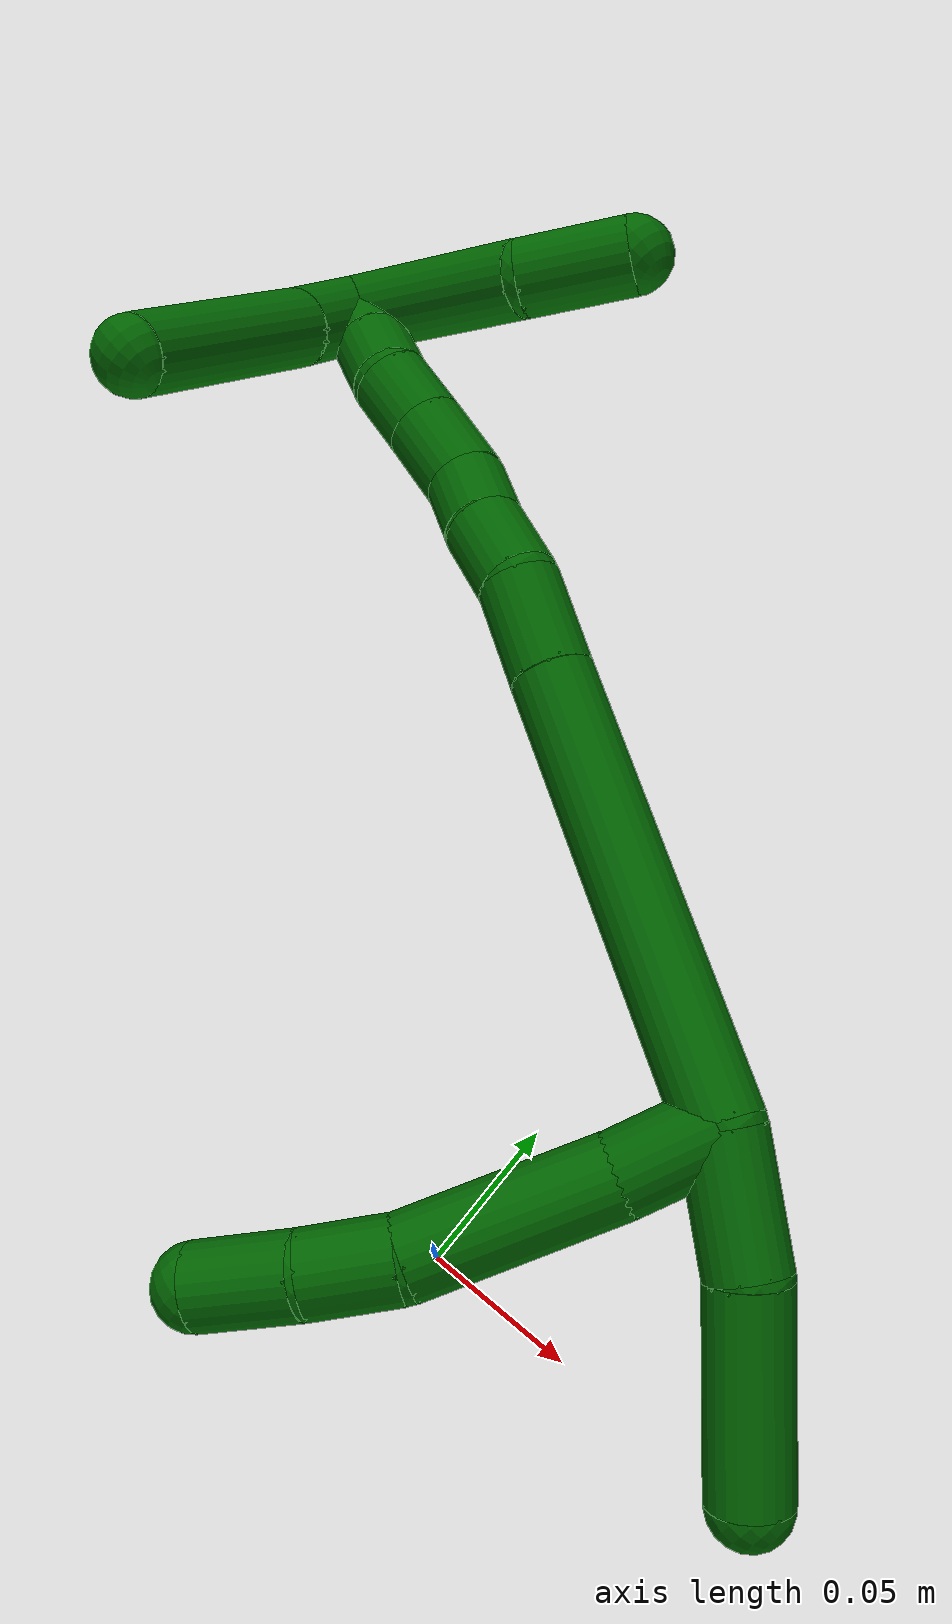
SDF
<sdf version="1.7">
 <world name="default">
  <model name="photoneo_s_sensor">
   <static>1</static>
   <pose>0 0 2 1.57079 1.57079 3.14159</pose>
   <link name="link">
    <inertial><mass>0.1</mass></inertial>
    <sensor name="sensor" type="depth">
     <update_rate>30</update_rate>
     <camera>
      <horizontal_fov>1.22</horizontal_fov>
      <image><width>1920</width><height>1200</height><format>B8G8R8</format></image>
      <clip><near>0.1</near><far>4</far></clip>
      <depth_camera><output>points</output></depth_camera>
     </camera>
     <plugin name="camera_plugin" filename="libgazebo_ros_depth_camera.so">
      <baseline>0.2</baseline>
      <alwaysOn>1</alwaysOn>
      <updateRate>0.0</updateRate>
      <cameraName>camera_ir</cameraName>
      <imageTopicName>/camera/color/image_raw</imageTopicName>
      <cameraInfoTopicName>/camera/color/camera_info</cameraInfoTopicName>
      <depthImageTopicName>/camera/depth/image_raw</depthImageTopicName>
      <depthImageCameraInfoTopicName>/camera/depth/camera_info</depthImageCameraInfoTopicName>
      <pointCloudTopicName>/camera/depth/points</pointCloudTopicName>
      <frameName>fr_optical</frameName>
      <pointCloudCutoff>0.1</pointCloudCutoff>
      <pointCloudCutoffMax>2.0</pointCloudCutoffMax>
      <distortionK1>0</distortionK1>
      <distortionK2>0</distortionK2>
      <distortionK3>0</distortionK3>
      <distortionT1>0</distortionT1>
      <distortionT2>0</distortionT2>
      <CxPrime>0</CxPrime>
      <Cx>0</Cx>
      <Cy>0</Cy>
      <focalLength>0</focalLength>
      <hackBaseline>0</hackBaseline>
     </plugin>
    </sensor>
   </link>
  </model>
  <model name="bin">
   <static>1</static>
   <link name="bottom">
    <collision name="collision-bottom">
     <pose>0 0 -0.01 0 -0 0</pose>
     <geometry><box><size>0.8 0.6 0.02</size></box></geometry>
     <surface>
      <friction><ode><mu>100</mu><mu2>100</mu2></ode></friction>
      <contact><collide_bitmask>65535</collide_bitmask></contact>
     </surface>
    </collision>
   </link>
   <link name="west_wall">
    <collision name="collision-west_wall">
     <pose>-0.41 0 0.1 0 -0 0</pose>
     <geometry><box><size>0.02 0.6 0.2</size></box></geometry>
     <surface>
      <friction><ode><mu>100</mu><mu2>100</mu2></ode></friction>
      <contact><collide_bitmask>65535</collide_bitmask></contact>
     </surface>
    </collision>
   </link>
   <link name="east_wall">
    <collision name="collision-east_wall">
     <pose>0.41 0 0.1 0 -0 0</pose>
     <geometry><box><size>0.02 0.6 0.2</size></box></geometry>
     <surface>
      <friction><ode><mu>100</mu><mu2>100</mu2></ode></friction>
      <contact><collide_bitmask>65535</collide_bitmask></contact>
     </surface>
    </collision>
   </link>
   <link name="south_wall">
    <collision name="collision-south_wall">
     <pose>0 -0.31 0.1 0 -0 0</pose>
     <geometry><box><size>0.8 0.02 0.2</size></box></geometry>
     <surface>
      <friction><ode><mu>100</mu><mu2>100</mu2></ode></friction>
      <contact><collide_bitmask>65535</collide_bitmask></contact>
     </surface>
    </collision>
   </link>
   <link name="north_wall">
    <collision name="collision-north_wall">
     <pose>0 0.31 0.1 0 -0 0</pose>
     <geometry><box><size>0.8 0.02 0.2</size></box></geometry>
     <surface>
      <friction><ode><mu>100</mu><mu2>100</mu2></ode></friction>
      <contact><collide_bitmask>65535</collide_bitmask></contact>
     </surface>
    </collision>
   </link>
  </model>
  <model name="6">
   <static>0</static>
   <link name="6">
    <collision name="collision-cylinder-e_1_2_8">
     <pose>0.0067 -0.013029 0.004398 1.24524 0.453396 0.328195</pose>
     <geometry><cylinder><radius>0.0125</radius><length>0.030594</length></cylinder></geometry>
     <surface>
      <friction><ode><mu>1.16</mu><mu2>1.16</mu2><slip1>0</slip1><slip2>0</slip2></ode></friction>
      <contact><ode><kp>1e+06</kp><kd>1</kd><max_vel>0</max_vel><min_depth>0.001</min_depth></ode></contact>
     </surface>
    </collision>
    <visual name="visual-cylinder-e_1_2_8">
     <pose>0.0067 -0.013029 0.004398 1.24524 0.453396 0.328195</pose>
     <geometry><cylinder><radius>0.0125</radius><length>0.030594</length></cylinder></geometry>
     <material><ambient>0 0.392157 0.003922 1</ambient></material>
    </visual>
    <collision name="collision-cylinder-e_2_8_9">
     <pose>0.031222 -0.048648 0.019111 1.14245 0.622463 0.407751</pose>
     <geometry><cylinder><radius>0.0125</radius><length>0.061132</length></cylinder></geometry>
     <surface>
      <friction><ode><mu>1.16</mu><mu2>1.16</mu2><slip1>0</slip1><slip2>0</slip2></ode></friction>
      <contact><ode><kp>1e+06</kp><kd>1</kd><max_vel>0</max_vel><min_depth>0.001</min_depth></ode></contact>
     </surface>
    </collision>
    <visual name="visual-cylinder-e_2_8_9">
     <pose>0.031222 -0.048648 0.019111 1.14245 0.622463 0.407751</pose>
     <geometry><cylinder><radius>0.0125</radius><length>0.061132</length></cylinder></geometry>
     <material><ambient>0 0.392157 0.003922 1</ambient></material>
    </visual>
    <collision name="collision-cylinder-e_3_9_10">
     <pose>0.055445 -0.080801 0.036508 0.933371 0.493549 0.252475</pose>
     <geometry><cylinder><radius>0.0125</radius><length>0.027026</length></cylinder></geometry>
     <surface>
      <friction><ode><mu>1.16</mu><mu2>1.16</mu2><slip1>0</slip1><slip2>0</slip2></ode></friction>
      <contact><ode><kp>1e+06</kp><kd>1</kd><max_vel>0</max_vel><min_depth>0.001</min_depth></ode></contact>
     </surface>
    </collision>
    <visual name="visual-cylinder-e_3_9_10">
     <pose>0.055445 -0.080801 0.036508 0.933371 0.493549 0.252475</pose>
     <geometry><cylinder><radius>0.0125</radius><length>0.027026</length></cylinder></geometry>
     <material><ambient>0 0.392157 0.003922 1</ambient></material>
    </visual>
    <collision name="collision-cylinder-e_4_10_6">
     <pose>0.06664 -0.10236 0.05238 0.938438 0.311782 0.159026</pose>
     <geometry><cylinder><radius>0.0125</radius><length>0.031248</length></cylinder></geometry>
     <surface>
      <friction><ode><mu>1.16</mu><mu2>1.16</mu2><slip1>0</slip1><slip2>0</slip2></ode></friction>
      <contact><ode><kp>1e+06</kp><kd>1</kd><max_vel>0</max_vel><min_depth>0.001</min_depth></ode></contact>
     </surface>
    </collision>
    <visual name="visual-cylinder-e_4_10_6">
     <pose>0.06664 -0.10236 0.05238 0.938438 0.311782 0.159026</pose>
     <geometry><cylinder><radius>0.0125</radius><length>0.031248</length></cylinder></geometry>
     <material><ambient>0 0.392157 0.003922 1</ambient></material>
    </visual>
    <collision name="collision-cylinder-e_1_2_11">
     <pose>0.00282 -0.010579 -0.016457 2.57027 0.14313 0.478815</pose>
     <geometry><cylinder><radius>0.0125</radius><length>0.039533</length></cylinder></geometry>
     <surface>
      <friction><ode><mu>1.16</mu><mu2>1.16</mu2><slip1>0</slip1><slip2>0</slip2></ode></friction>
      <contact><ode><kp>1e+06</kp><kd>1</kd><max_vel>0</max_vel><min_depth>0.001</min_depth></ode></contact>
     </surface>
    </collision>
    <visual name="visual-cylinder-e_1_2_11">
     <pose>0.00282 -0.010579 -0.016457 2.57027 0.14313 0.478815</pose>
     <geometry><cylinder><radius>0.0125</radius><length>0.039533</length></cylinder></geometry>
     <material><ambient>0 0.392157 0.003922 1</ambient></material>
    </visual>
    <collision name="collision-cylinder-e_2_11_5">
     <pose>0.007955 -0.042646 -0.054057 2.3481 0.07667 0.18258</pose>
     <geometry><cylinder><radius>0.0125</radius><length>0.060467</length></cylinder></geometry>
     <surface>
      <friction><ode><mu>1.16</mu><mu2>1.16</mu2><slip1>0</slip1><slip2>0</slip2></ode></friction>
      <contact><ode><kp>1e+06</kp><kd>1</kd><max_vel>0</max_vel><min_depth>0.001</min_depth></ode></contact>
     </surface>
    </collision>
    <visual name="visual-cylinder-e_2_11_5">
     <pose>0.007955 -0.042646 -0.054057 2.3481 0.07667 0.18258</pose>
     <geometry><cylinder><radius>0.0125</radius><length>0.060467</length></cylinder></geometry>
     <material><ambient>0 0.392157 0.003922 1</ambient></material>
    </visual>
    <collision name="collision-cylinder-e_1_2_12">
     <pose>-0.014302 0.020118 0.063182 -0.308265 -0.212437 0.033127</pose>
     <geometry><cylinder><radius>0.0125</radius><length>0.135665</length></cylinder></geometry>
     <surface>
      <friction><ode><mu>1.16</mu><mu2>1.16</mu2><slip1>0</slip1><slip2>0</slip2></ode></friction>
      <contact><ode><kp>1e+06</kp><kd>1</kd><max_vel>0</max_vel><min_depth>0.001</min_depth></ode></contact>
     </surface>
    </collision>
    <visual name="visual-cylinder-e_1_2_12">
     <pose>-0.014302 0.020118 0.063182 -0.308265 -0.212437 0.033127</pose>
     <geometry><cylinder><radius>0.0125</radius><length>0.135665</length></cylinder></geometry>
     <material><ambient>0 0.392157 0.003922 1</ambient></material>
    </visual>
    <collision name="collision-cylinder-e_2_12_13">
     <pose>-0.032248 0.044766 0.140597 -0.308146 -0.239286 0.037336</pose>
     <geometry><cylinder><radius>0.0125</radius><length>0.030749</length></cylinder></geometry>
     <surface>
      <friction><ode><mu>1.16</mu><mu2>1.16</mu2><slip1>0</slip1><slip2>0</slip2></ode></friction>
      <contact><ode><kp>1e+06</kp><kd>1</kd><max_vel>0</max_vel><min_depth>0.001</min_depth></ode></contact>
     </surface>
    </collision>
    <visual name="visual-cylinder-e_2_12_13">
     <pose>-0.032248 0.044766 0.140597 -0.308146 -0.239286 0.037336</pose>
     <geometry><cylinder><radius>0.0125</radius><length>0.030749</length></cylinder></geometry>
     <material><ambient>0 0.392157 0.003922 1</ambient></material>
    </visual>
    <collision name="collision-cylinder-e_3_13_14">
     <pose>-0.040101 0.049663 0.166455 -0.031477 -0.347221 0.005521</pose>
     <geometry><cylinder><radius>0.0125</radius><length>0.024738</length></cylinder></geometry>
     <surface>
      <friction><ode><mu>1.16</mu><mu2>1.16</mu2><slip1>0</slip1><slip2>0</slip2></ode></friction>
      <contact><ode><kp>1e+06</kp><kd>1</kd><max_vel>0</max_vel><min_depth>0.001</min_depth></ode></contact>
     </surface>
    </collision>
    <visual name="visual-cylinder-e_3_13_14">
     <pose>-0.040101 0.049663 0.166455 -0.031477 -0.347221 0.005521</pose>
     <geometry><cylinder><radius>0.0125</radius><length>0.024738</length></cylinder></geometry>
     <material><ambient>0 0.392157 0.003922 1</ambient></material>
    </visual>
    <collision name="collision-cylinder-e_4_14_15">
     <pose>-0.048666 0.051096 0.187072 -0.118153 -0.448411 0.026973</pose>
     <geometry><cylinder><radius>0.0125</radius><length>0.020097</length></cylinder></geometry>
     <surface>
      <friction><ode><mu>1.16</mu><mu2>1.16</mu2><slip1>0</slip1><slip2>0</slip2></ode></friction>
      <contact><ode><kp>1e+06</kp><kd>1</kd><max_vel>0</max_vel><min_depth>0.001</min_depth></ode></contact>
     </surface>
    </collision>
    <visual name="visual-cylinder-e_4_14_15">
     <pose>-0.048666 0.051096 0.187072 -0.118153 -0.448411 0.026973</pose>
     <geometry><cylinder><radius>0.0125</radius><length>0.020097</length></cylinder></geometry>
     <material><ambient>0 0.392157 0.003922 1</ambient></material>
    </visual>
    <collision name="collision-cylinder-e_5_15_16">
     <pose>-0.055729 0.052538 0.208414 -0.030286 -0.2156 0.003278</pose>
     <geometry><cylinder><radius>0.0125</radius><length>0.025296</length></cylinder></geometry>
     <surface>
      <friction><ode><mu>1.16</mu><mu2>1.16</mu2><slip1>0</slip1><slip2>0</slip2></ode></friction>
      <contact><ode><kp>1e+06</kp><kd>1</kd><max_vel>0</max_vel><min_depth>0.001</min_depth></ode></contact>
     </surface>
    </collision>
    <visual name="visual-cylinder-e_5_15_16">
     <pose>-0.055729 0.052538 0.208414 -0.030286 -0.2156 0.003278</pose>
     <geometry><cylinder><radius>0.0125</radius><length>0.025296</length></cylinder></geometry>
     <material><ambient>0 0.392157 0.003922 1</ambient></material>
    </visual>
    <collision name="collision-cylinder-e_6_16_17">
     <pose>-0.060487 0.053229 0.23168 -0.029085 -0.185754 0.002709</pose>
     <geometry><cylinder><radius>0.0125</radius><length>0.022225</length></cylinder></geometry>
     <surface>
      <friction><ode><mu>1.16</mu><mu2>1.16</mu2><slip1>0</slip1><slip2>0</slip2></ode></friction>
      <contact><ode><kp>1e+06</kp><kd>1</kd><max_vel>0</max_vel><min_depth>0.001</min_depth></ode></contact>
     </surface>
    </collision>
    <visual name="visual-cylinder-e_6_16_17">
     <pose>-0.060487 0.053229 0.23168 -0.029085 -0.185754 0.002709</pose>
     <geometry><cylinder><radius>0.0125</radius><length>0.022225</length></cylinder></geometry>
     <material><ambient>0 0.392157 0.003922 1</ambient></material>
    </visual>
    <collision name="collision-cylinder-e_7_17_18">
     <pose>-0.06741 0.053563 0.251764 -0.001809 -0.488383 0.000451</pose>
     <geometry><cylinder><radius>0.0125</radius><length>0.020763</length></cylinder></geometry>
     <surface>
      <friction><ode><mu>1.16</mu><mu2>1.16</mu2><slip1>0</slip1><slip2>0</slip2></ode></friction>
      <contact><ode><kp>1e+06</kp><kd>1</kd><max_vel>0</max_vel><min_depth>0.001</min_depth></ode></contact>
     </surface>
    </collision>
    <visual name="visual-cylinder-e_7_17_18">
     <pose>-0.06741 0.053563 0.251764 -0.001809 -0.488383 0.000451</pose>
     <geometry><cylinder><radius>0.0125</radius><length>0.020763</length></cylinder></geometry>
     <material><ambient>0 0.392157 0.003922 1</ambient></material>
    </visual>
    <collision name="collision-cylinder-e_8_18_1">
     <pose>-0.077173 0.053542 0.26992 0.004285 -0.498466 -0.001091</pose>
     <geometry><cylinder><radius>0.0125</radius><length>0.020467</length></cylinder></geometry>
     <surface>
      <friction><ode><mu>1.16</mu><mu2>1.16</mu2><slip1>0</slip1><slip2>0</slip2></ode></friction>
      <contact><ode><kp>1e+06</kp><kd>1</kd><max_vel>0</max_vel><min_depth>0.001</min_depth></ode></contact>
     </surface>
    </collision>
    <visual name="visual-cylinder-e_8_18_1">
     <pose>-0.077173 0.053542 0.26992 0.004285 -0.498466 -0.001091</pose>
     <geometry><cylinder><radius>0.0125</radius><length>0.020467</length></cylinder></geometry>
     <material><ambient>0 0.392157 0.003922 1</ambient></material>
    </visual>
    <collision name="collision-cylinder-e_1_1_19">
     <pose>-0.082281 0.077161 0.257372 -2.30928 -0.006719 0.015202</pose>
     <geometry><cylinder><radius>0.0125</radius><length>0.063986</length></cylinder></geometry>
     <surface>
      <friction><ode><mu>1.16</mu><mu2>1.16</mu2><slip1>0</slip1><slip2>0</slip2></ode></friction>
      <contact><ode><kp>1e+06</kp><kd>1</kd><max_vel>0</max_vel><min_depth>0.001</min_depth></ode></contact>
     </surface>
    </collision>
    <visual name="visual-cylinder-e_1_1_19">
     <pose>-0.082281 0.077161 0.257372 -2.30928 -0.006719 0.015202</pose>
     <geometry><cylinder><radius>0.0125</radius><length>0.063986</length></cylinder></geometry>
     <material><ambient>0 0.392157 0.003922 1</ambient></material>
    </visual>
    <collision name="collision-cylinder-e_2_19_4">
     <pose>-0.088471 0.114082 0.225222 -2.24573 -0.338229 0.682852</pose>
     <geometry><cylinder><radius>0.0125</radius><length>0.036014</length></cylinder></geometry>
     <surface>
      <friction><ode><mu>1.16</mu><mu2>1.16</mu2><slip1>0</slip1><slip2>0</slip2></ode></friction>
      <contact><ode><kp>1e+06</kp><kd>1</kd><max_vel>0</max_vel><min_depth>0.001</min_depth></ode></contact>
     </surface>
    </collision>
    <visual name="visual-cylinder-e_2_19_4">
     <pose>-0.088471 0.114082 0.225222 -2.24573 -0.338229 0.682852</pose>
     <geometry><cylinder><radius>0.0125</radius><length>0.036014</length></cylinder></geometry>
     <material><ambient>0 0.392157 0.003922 1</ambient></material>
    </visual>
    <collision name="collision-cylinder-e_1_1_20">
     <pose>-0.067557 0.050436 0.277668 1.95496 1.34664 1.73793</pose>
     <geometry><cylinder><radius>0.0125</radius><length>0.029763</length></cylinder></geometry>
     <surface>
      <friction><ode><mu>1.16</mu><mu2>1.16</mu2><slip1>0</slip1><slip2>0</slip2></ode></friction>
      <contact><ode><kp>1e+06</kp><kd>1</kd><max_vel>0</max_vel><min_depth>0.001</min_depth></ode></contact>
     </surface>
    </collision>
    <visual name="visual-cylinder-e_1_1_20">
     <pose>-0.067557 0.050436 0.277668 1.95496 1.34664 1.73793</pose>
     <geometry><cylinder><radius>0.0125</radius><length>0.029763</length></cylinder></geometry>
     <material><ambient>0 0.392157 0.003922 1</ambient></material>
    </visual>
    <collision name="collision-cylinder-e_2_20_3">
     <pose>-0.018657 0.040412 0.274939 1.7817 1.36676 1.57782</pose>
     <geometry><cylinder><radius>0.0125</radius><length>0.070237</length></cylinder></geometry>
     <surface>
      <friction><ode><mu>1.16</mu><mu2>1.16</mu2><slip1>0</slip1><slip2>0</slip2></ode></friction>
      <contact><ode><kp>1e+06</kp><kd>1</kd><max_vel>0</max_vel><min_depth>0.001</min_depth></ode></contact>
     </surface>
    </collision>
    <visual name="visual-cylinder-e_2_20_3">
     <pose>-0.018657 0.040412 0.274939 1.7817 1.36676 1.57782</pose>
     <geometry><cylinder><radius>0.0125</radius><length>0.070237</length></cylinder></geometry>
     <material><ambient>0 0.392157 0.003922 1</ambient></material>
    </visual>
    <collision name="collision-sphere-3">
     <pose>0.015733 0.033453 0.27345 0 -0 0</pose>
     <geometry><sphere><radius>0.0125</radius></sphere></geometry>
     <surface>
      <friction><ode><mu>1.16</mu><mu2>1.16</mu2><slip1>0</slip1><slip2>0</slip2></ode></friction>
      <contact><ode><kp>1e+06</kp><kd>1</kd><max_vel>0</max_vel><min_depth>0.001</min_depth></ode></contact>
     </surface>
    </collision>
    <visual name="visual-sphere-3">
     <pose>0.015733 0.033453 0.27345 0 -0 0</pose>
     <geometry><sphere><radius>0.0125</radius></sphere></geometry>
     <material><ambient>0 0.392157 0.003922 1</ambient></material>
    </visual>
    <collision name="collision-sphere-20">
     <pose>-0.053048 0.04737 0.276429 0 -0 0</pose>
     <geometry><sphere><radius>0.0125</radius></sphere></geometry>
     <surface>
      <friction><ode><mu>1.16</mu><mu2>1.16</mu2><slip1>0</slip1><slip2>0</slip2></ode></friction>
      <contact><ode><kp>1e+06</kp><kd>1</kd><max_vel>0</max_vel><min_depth>0.001</min_depth></ode></contact>
     </surface>
    </collision>
    <visual name="visual-sphere-20">
     <pose>-0.053048 0.04737 0.276429 0 -0 0</pose>
     <geometry><sphere><radius>0.0125</radius></sphere></geometry>
     <material><ambient>0 0.392157 0.003922 1</ambient></material>
    </visual>
    <collision name="collision-sphere-4">
     <pose>-0.094446 0.127344 0.214608 0 -0 0</pose>
     <geometry><sphere><radius>0.0125</radius></sphere></geometry>
     <surface>
      <friction><ode><mu>1.16</mu><mu2>1.16</mu2><slip1>0</slip1><slip2>0</slip2></ode></friction>
      <contact><ode><kp>1e+06</kp><kd>1</kd><max_vel>0</max_vel><min_depth>0.001</min_depth></ode></contact>
     </surface>
    </collision>
    <visual name="visual-sphere-4">
     <pose>-0.094446 0.127344 0.214608 0 -0 0</pose>
     <geometry><sphere><radius>0.0125</radius></sphere></geometry>
     <material><ambient>0 0.392157 0.003922 1</ambient></material>
    </visual>
    <collision name="collision-sphere-11">
     <pose>0.005639 -0.021159 -0.032915 0 -0 0</pose>
     <geometry><sphere><radius>0.0125</radius></sphere></geometry>
     <surface>
      <friction><ode><mu>1.16</mu><mu2>1.16</mu2><slip1>0</slip1><slip2>0</slip2></ode></friction>
      <contact><ode><kp>1e+06</kp><kd>1</kd><max_vel>0</max_vel><min_depth>0.001</min_depth></ode></contact>
     </surface>
    </collision>
    <visual name="visual-sphere-11">
     <pose>0.005639 -0.021159 -0.032915 0 -0 0</pose>
     <geometry><sphere><radius>0.0125</radius></sphere></geometry>
     <material><ambient>0 0.392157 0.003922 1</ambient></material>
    </visual>
    <collision name="collision-sphere-6">
     <pose>0.071432 -0.114355 0.061169 0 -0 0</pose>
     <geometry><sphere><radius>0.0125</radius></sphere></geometry>
     <surface>
      <friction><ode><mu>1.16</mu><mu2>1.16</mu2><slip1>0</slip1><slip2>0</slip2></ode></friction>
      <contact><ode><kp>1e+06</kp><kd>1</kd><max_vel>0</max_vel><min_depth>0.001</min_depth></ode></contact>
     </surface>
    </collision>
    <visual name="visual-sphere-6">
     <pose>0.071432 -0.114355 0.061169 0 -0 0</pose>
     <geometry><sphere><radius>0.0125</radius></sphere></geometry>
     <material><ambient>0 0.392157 0.003922 1</ambient></material>
    </visual>
    <collision name="collision-sphere-10">
     <pose>0.061847 -0.090365 0.043591 0 -0 0</pose>
     <geometry><sphere><radius>0.0125</radius></sphere></geometry>
     <surface>
      <friction><ode><mu>1.16</mu><mu2>1.16</mu2><slip1>0</slip1><slip2>0</slip2></ode></friction>
      <contact><ode><kp>1e+06</kp><kd>1</kd><max_vel>0</max_vel><min_depth>0.001</min_depth></ode></contact>
     </surface>
    </collision>
    <visual name="visual-sphere-10">
     <pose>0.061847 -0.090365 0.043591 0 -0 0</pose>
     <geometry><sphere><radius>0.0125</radius></sphere></geometry>
     <material><ambient>0 0.392157 0.003922 1</ambient></material>
    </visual>
    <collision name="collision-sphere-9">
     <pose>0.049043 -0.071238 0.029426 0 -0 0</pose>
     <geometry><sphere><radius>0.0125</radius></sphere></geometry>
     <surface>
      <friction><ode><mu>1.16</mu><mu2>1.16</mu2><slip1>0</slip1><slip2>0</slip2></ode></friction>
      <contact><ode><kp>1e+06</kp><kd>1</kd><max_vel>0</max_vel><min_depth>0.001</min_depth></ode></contact>
     </surface>
    </collision>
    <visual name="visual-sphere-9">
     <pose>0.049043 -0.071238 0.029426 0 -0 0</pose>
     <geometry><sphere><radius>0.0125</radius></sphere></geometry>
     <material><ambient>0 0.392157 0.003922 1</ambient></material>
    </visual>
    <collision name="collision-sphere-2">
     <geometry><sphere><radius>0.0125</radius></sphere></geometry>
     <surface>
      <friction><ode><mu>1.16</mu><mu2>1.16</mu2><slip1>0</slip1><slip2>0</slip2></ode></friction>
      <contact><ode><kp>1e+06</kp><kd>1</kd><max_vel>0</max_vel><min_depth>0.001</min_depth></ode></contact>
     </surface>
    </collision>
    <visual name="visual-sphere-2">
     <geometry><sphere><radius>0.0125</radius></sphere></geometry>
     <material><ambient>0 0.392157 0.003922 1</ambient></material>
    </visual>
    <collision name="collision-sphere-19">
     <pose>-0.082496 0.100819 0.235836 0 -0 0</pose>
     <geometry><sphere><radius>0.0125</radius></sphere></geometry>
     <surface>
      <friction><ode><mu>1.16</mu><mu2>1.16</mu2><slip1>0</slip1><slip2>0</slip2></ode></friction>
      <contact><ode><kp>1e+06</kp><kd>1</kd><max_vel>0</max_vel><min_depth>0.001</min_depth></ode></contact>
     </surface>
    </collision>
    <visual name="visual-sphere-19">
     <pose>-0.082496 0.100819 0.235836 0 -0 0</pose>
     <geometry><sphere><radius>0.0125</radius></sphere></geometry>
     <material><ambient>0 0.392157 0.003922 1</ambient></material>
    </visual>
    <collision name="collision-sphere-8">
     <pose>0.013401 -0.026059 0.008797 0 -0 0</pose>
     <geometry><sphere><radius>0.0125</radius></sphere></geometry>
     <surface>
      <friction><ode><mu>1.16</mu><mu2>1.16</mu2><slip1>0</slip1><slip2>0</slip2></ode></friction>
      <contact><ode><kp>1e+06</kp><kd>1</kd><max_vel>0</max_vel><min_depth>0.001</min_depth></ode></contact>
     </surface>
    </collision>
    <visual name="visual-sphere-8">
     <pose>0.013401 -0.026059 0.008797 0 -0 0</pose>
     <geometry><sphere><radius>0.0125</radius></sphere></geometry>
     <material><ambient>0 0.392157 0.003922 1</ambient></material>
    </visual>
    <collision name="collision-sphere-5">
     <pose>0.010271 -0.064133 -0.075199 0 -0 0</pose>
     <geometry><sphere><radius>0.0125</radius></sphere></geometry>
     <surface>
      <friction><ode><mu>1.16</mu><mu2>1.16</mu2><slip1>0</slip1><slip2>0</slip2></ode></friction>
      <contact><ode><kp>1e+06</kp><kd>1</kd><max_vel>0</max_vel><min_depth>0.001</min_depth></ode></contact>
     </surface>
    </collision>
    <visual name="visual-sphere-5">
     <pose>0.010271 -0.064133 -0.075199 0 -0 0</pose>
     <geometry><sphere><radius>0.0125</radius></sphere></geometry>
     <material><ambient>0 0.392157 0.003922 1</ambient></material>
    </visual>
    <collision name="collision-sphere-12">
     <pose>-0.028604 0.040236 0.126364 0 -0 0</pose>
     <geometry><sphere><radius>0.0125</radius></sphere></geometry>
     <surface>
      <friction><ode><mu>1.16</mu><mu2>1.16</mu2><slip1>0</slip1><slip2>0</slip2></ode></friction>
      <contact><ode><kp>1e+06</kp><kd>1</kd><max_vel>0</max_vel><min_depth>0.001</min_depth></ode></contact>
     </surface>
    </collision>
    <visual name="visual-sphere-12">
     <pose>-0.028604 0.040236 0.126364 0 -0 0</pose>
     <geometry><sphere><radius>0.0125</radius></sphere></geometry>
     <material><ambient>0 0.392157 0.003922 1</ambient></material>
    </visual>
    <collision name="collision-sphere-13">
     <pose>-0.035892 0.049297 0.15483 0 -0 0</pose>
     <geometry><sphere><radius>0.0125</radius></sphere></geometry>
     <surface>
      <friction><ode><mu>1.16</mu><mu2>1.16</mu2><slip1>0</slip1><slip2>0</slip2></ode></friction>
      <contact><ode><kp>1e+06</kp><kd>1</kd><max_vel>0</max_vel><min_depth>0.001</min_depth></ode></contact>
     </surface>
    </collision>
    <visual name="visual-sphere-13">
     <pose>-0.035892 0.049297 0.15483 0 -0 0</pose>
     <geometry><sphere><radius>0.0125</radius></sphere></geometry>
     <material><ambient>0 0.392157 0.003922 1</ambient></material>
    </visual>
    <collision name="collision-sphere-14">
     <pose>-0.04431 0.050029 0.17808 0 -0 0</pose>
     <geometry><sphere><radius>0.0125</radius></sphere></geometry>
     <surface>
      <friction><ode><mu>1.16</mu><mu2>1.16</mu2><slip1>0</slip1><slip2>0</slip2></ode></friction>
      <contact><ode><kp>1e+06</kp><kd>1</kd><max_vel>0</max_vel><min_depth>0.001</min_depth></ode></contact>
     </surface>
    </collision>
    <visual name="visual-sphere-14">
     <pose>-0.04431 0.050029 0.17808 0 -0 0</pose>
     <geometry><sphere><radius>0.0125</radius></sphere></geometry>
     <material><ambient>0 0.392157 0.003922 1</ambient></material>
    </visual>
    <collision name="collision-sphere-15">
     <pose>-0.053023 0.052163 0.196064 0 -0 0</pose>
     <geometry><sphere><radius>0.0125</radius></sphere></geometry>
     <surface>
      <friction><ode><mu>1.16</mu><mu2>1.16</mu2><slip1>0</slip1><slip2>0</slip2></ode></friction>
      <contact><ode><kp>1e+06</kp><kd>1</kd><max_vel>0</max_vel><min_depth>0.001</min_depth></ode></contact>
     </surface>
    </collision>
    <visual name="visual-sphere-15">
     <pose>-0.053023 0.052163 0.196064 0 -0 0</pose>
     <geometry><sphere><radius>0.0125</radius></sphere></geometry>
     <material><ambient>0 0.392157 0.003922 1</ambient></material>
    </visual>
    <collision name="collision-sphere-16">
     <pose>-0.058434 0.052912 0.220764 0 -0 0</pose>
     <geometry><sphere><radius>0.0125</radius></sphere></geometry>
     <surface>
      <friction><ode><mu>1.16</mu><mu2>1.16</mu2><slip1>0</slip1><slip2>0</slip2></ode></friction>
      <contact><ode><kp>1e+06</kp><kd>1</kd><max_vel>0</max_vel><min_depth>0.001</min_depth></ode></contact>
     </surface>
    </collision>
    <visual name="visual-sphere-16">
     <pose>-0.058434 0.052912 0.220764 0 -0 0</pose>
     <geometry><sphere><radius>0.0125</radius></sphere></geometry>
     <material><ambient>0 0.392157 0.003922 1</ambient></material>
    </visual>
    <collision name="collision-sphere-17">
     <pose>-0.062539 0.053547 0.242597 0 -0 0</pose>
     <geometry><sphere><radius>0.0125</radius></sphere></geometry>
     <surface>
      <friction><ode><mu>1.16</mu><mu2>1.16</mu2><slip1>0</slip1><slip2>0</slip2></ode></friction>
      <contact><ode><kp>1e+06</kp><kd>1</kd><max_vel>0</max_vel><min_depth>0.001</min_depth></ode></contact>
     </surface>
    </collision>
    <visual name="visual-sphere-17">
     <pose>-0.062539 0.053547 0.242597 0 -0 0</pose>
     <geometry><sphere><radius>0.0125</radius></sphere></geometry>
     <material><ambient>0 0.392157 0.003922 1</ambient></material>
    </visual>
    <collision name="collision-sphere-18">
     <pose>-0.072281 0.05358 0.260932 0 -0 0</pose>
     <geometry><sphere><radius>0.0125</radius></sphere></geometry>
     <surface>
      <friction><ode><mu>1.16</mu><mu2>1.16</mu2><slip1>0</slip1><slip2>0</slip2></ode></friction>
      <contact><ode><kp>1e+06</kp><kd>1</kd><max_vel>0</max_vel><min_depth>0.001</min_depth></ode></contact>
     </surface>
    </collision>
    <visual name="visual-sphere-18">
     <pose>-0.072281 0.05358 0.260932 0 -0 0</pose>
     <geometry><sphere><radius>0.0125</radius></sphere></geometry>
     <material><ambient>0 0.392157 0.003922 1</ambient></material>
    </visual>
    <collision name="collision-sphere-1">
     <pose>-0.082066 0.053503 0.278908 0 -0 0</pose>
     <geometry><sphere><radius>0.0125</radius></sphere></geometry>
     <surface>
      <friction><ode><mu>1.16</mu><mu2>1.16</mu2><slip1>0</slip1><slip2>0</slip2></ode></friction>
      <contact><ode><kp>1e+06</kp><kd>1</kd><max_vel>0</max_vel><min_depth>0.001</min_depth></ode></contact>
     </surface>
    </collision>
    <visual name="visual-sphere-1">
     <pose>-0.082066 0.053503 0.278908 0 -0 0</pose>
     <geometry><sphere><radius>0.0125</radius></sphere></geometry>
     <material><ambient>0 0.392157 0.003922 1</ambient></material>
    </visual>
    <inertial>
     <pose>-0.021494 0.016953 0.125475 0 -0 0</pose>
     <mass>0.75</mass>
     <inertia>
      <ixx>0.000342</ixx>
      <ixy>0</ixy>
      <ixz>0</ixz>
      <iyy>0.000261</iyy>
      <iyz>0</iyz>
      <izz>-2.4e-05</izz>
     </inertia>
    </inertial>
   </link>
   <pose>0.044017 0.06871 0.107081 1.6507 -0.84217 -1.82184</pose>
  </model>
 </world>
</sdf>
